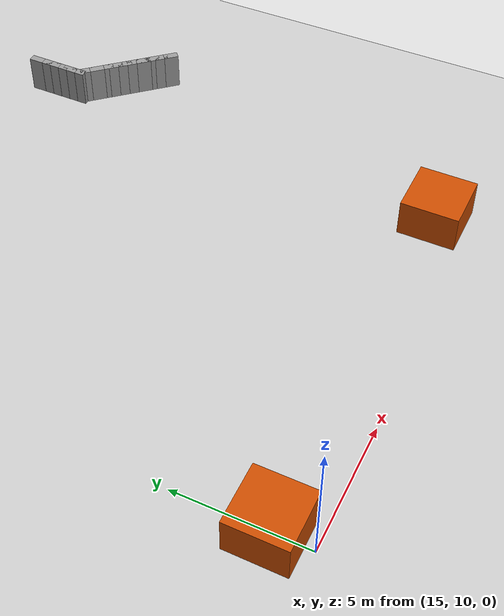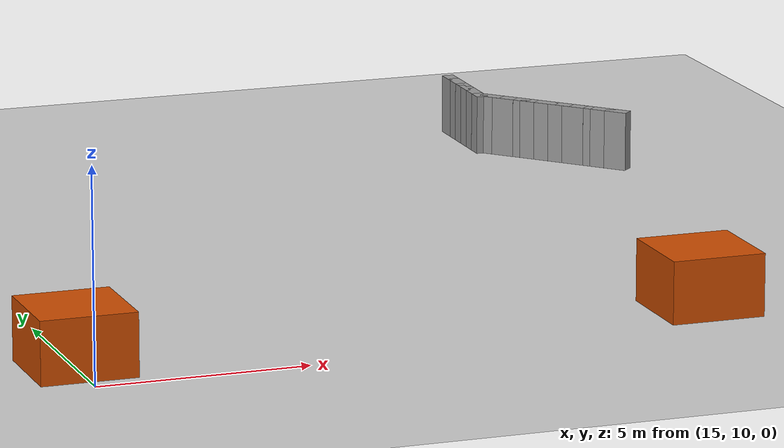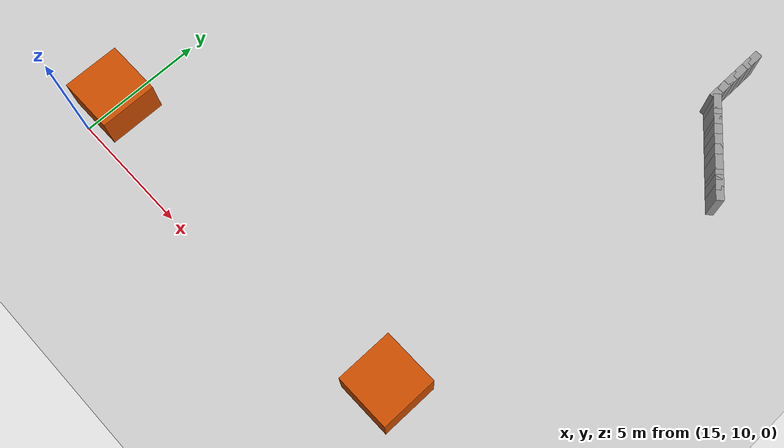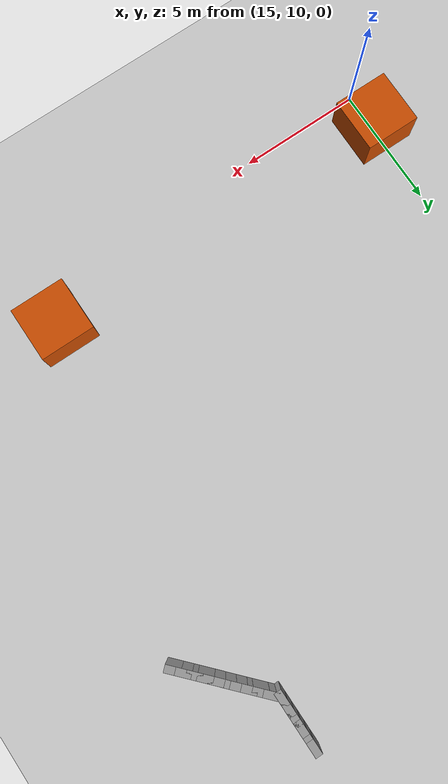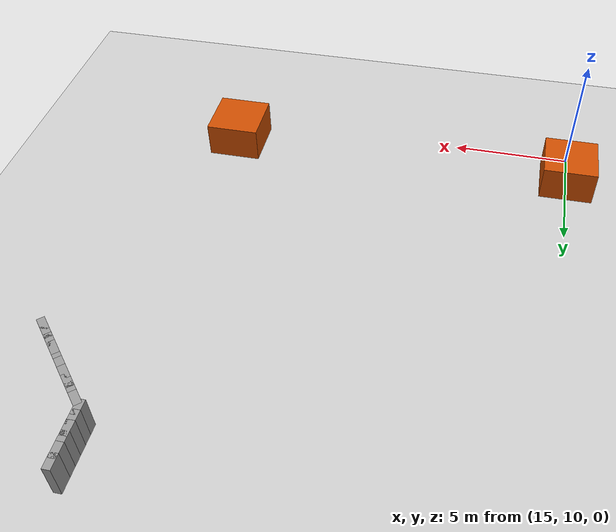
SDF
<sdf version="1.5">
 <world name="img_rect_obs">
  <include><uri>model://sun</uri></include>
  <include><uri>model://ground_plane</uri></include>
  <model name="wallL_7">
   <static>true</static>
   <pose>30.569 29.623 0.750 0 0 -1.571</pose>
   <link name="link">
    <collision name="col"><geometry><box><size>0.600 0.300 1.500</size></box></geometry></collision>
    <visual name="vis">
     <geometry><box><size>0.600 0.300 1.500</size></box></geometry>
     <material><ambient>0.6 0.6 0.6 1</ambient><diffuse>0.6 0.6 0.6 1</diffuse></material>
    </visual>
   </link>
  </model>
  <model name="wallL_8">
   <static>true</static>
   <pose>30.569 29.223 0.750 0 0 -1.571</pose>
   <link name="link">
    <collision name="col"><geometry><box><size>0.600 0.300 1.500</size></box></geometry></collision>
    <visual name="vis">
     <geometry><box><size>0.600 0.300 1.500</size></box></geometry>
     <material><ambient>0.6 0.6 0.6 1</ambient><diffuse>0.6 0.6 0.6 1</diffuse></material>
    </visual>
   </link>
  </model>
  <model name="wallL_9">
   <static>true</static>
   <pose>30.569 28.823 0.750 0 0 -1.571</pose>
   <link name="link">
    <collision name="col"><geometry><box><size>0.600 0.300 1.500</size></box></geometry></collision>
    <visual name="vis">
     <geometry><box><size>0.600 0.300 1.500</size></box></geometry>
     <material><ambient>0.6 0.6 0.6 1</ambient><diffuse>0.6 0.6 0.6 1</diffuse></material>
    </visual>
   </link>
  </model>
  <model name="wallL_10">
   <static>true</static>
   <pose>30.569 28.423 0.750 0 0 -1.571</pose>
   <link name="link">
    <collision name="col"><geometry><box><size>0.600 0.300 1.500</size></box></geometry></collision>
    <visual name="vis">
     <geometry><box><size>0.600 0.300 1.500</size></box></geometry>
     <material><ambient>0.6 0.6 0.6 1</ambient><diffuse>0.6 0.6 0.6 1</diffuse></material>
    </visual>
   </link>
  </model>
  <model name="wallL_11">
   <static>true</static>
   <pose>30.569 28.023 0.750 0 0 -1.571</pose>
   <link name="link">
    <collision name="col"><geometry><box><size>0.600 0.300 1.500</size></box></geometry></collision>
    <visual name="vis">
     <geometry><box><size>0.600 0.300 1.500</size></box></geometry>
     <material><ambient>0.6 0.6 0.6 1</ambient><diffuse>0.6 0.6 0.6 1</diffuse></material>
    </visual>
   </link>
  </model>
  <model name="wallL_12">
   <static>true</static>
   <pose>30.569 27.623 0.750 0 0 -1.571</pose>
   <link name="link">
    <collision name="col"><geometry><box><size>0.600 0.300 1.500</size></box></geometry></collision>
    <visual name="vis">
     <geometry><box><size>0.600 0.300 1.500</size></box></geometry>
     <material><ambient>0.6 0.6 0.6 1</ambient><diffuse>0.6 0.6 0.6 1</diffuse></material>
    </visual>
   </link>
  </model>
  <model name="wallL_13">
   <static>true</static>
   <pose>30.808 27.316 0.750 0 0 -0.829</pose>
   <link name="link">
    <collision name="col"><geometry><box><size>0.600 0.300 1.500</size></box></geometry></collision>
    <visual name="vis">
     <geometry><box><size>0.600 0.300 1.500</size></box></geometry>
     <material><ambient>0.6 0.6 0.6 1</ambient><diffuse>0.6 0.6 0.6 1</diffuse></material>
    </visual>
   </link>
  </model>
  <model name="wallL_14">
   <static>true</static>
   <pose>31.078 27.021 0.750 0 0 -0.829</pose>
   <link name="link">
    <collision name="col"><geometry><box><size>0.600 0.300 1.500</size></box></geometry></collision>
    <visual name="vis">
     <geometry><box><size>0.600 0.300 1.500</size></box></geometry>
     <material><ambient>0.6 0.6 0.6 1</ambient><diffuse>0.6 0.6 0.6 1</diffuse></material>
    </visual>
   </link>
  </model>
  <model name="wallL_15">
   <static>true</static>
   <pose>31.349 26.726 0.750 0 0 -0.829</pose>
   <link name="link">
    <collision name="col"><geometry><box><size>0.600 0.300 1.500</size></box></geometry></collision>
    <visual name="vis">
     <geometry><box><size>0.600 0.300 1.500</size></box></geometry>
     <material><ambient>0.6 0.6 0.6 1</ambient><diffuse>0.6 0.6 0.6 1</diffuse></material>
    </visual>
   </link>
  </model>
  <model name="wallL_16">
   <static>true</static>
   <pose>31.619 26.431 0.750 0 0 -0.829</pose>
   <link name="link">
    <collision name="col"><geometry><box><size>0.600 0.300 1.500</size></box></geometry></collision>
    <visual name="vis">
     <geometry><box><size>0.600 0.300 1.500</size></box></geometry>
     <material><ambient>0.6 0.6 0.6 1</ambient><diffuse>0.6 0.6 0.6 1</diffuse></material>
    </visual>
   </link>
  </model>
  <model name="wallL_17">
   <static>true</static>
   <pose>31.889 26.136 0.750 0 0 -0.829</pose>
   <link name="link">
    <collision name="col"><geometry><box><size>0.600 0.300 1.500</size></box></geometry></collision>
    <visual name="vis">
     <geometry><box><size>0.600 0.300 1.500</size></box></geometry>
     <material><ambient>0.6 0.6 0.6 1</ambient><diffuse>0.6 0.6 0.6 1</diffuse></material>
    </visual>
   </link>
  </model>
  <model name="wallL_18">
   <static>true</static>
   <pose>32.159 25.841 0.750 0 0 -0.829</pose>
   <link name="link">
    <collision name="col"><geometry><box><size>0.600 0.300 1.500</size></box></geometry></collision>
    <visual name="vis">
     <geometry><box><size>0.600 0.300 1.500</size></box></geometry>
     <material><ambient>0.6 0.6 0.6 1</ambient><diffuse>0.6 0.6 0.6 1</diffuse></material>
    </visual>
   </link>
  </model>
  <model name="wallL_19">
   <static>true</static>
   <pose>32.429 25.546 0.750 0 0 -0.829</pose>
   <link name="link">
    <collision name="col"><geometry><box><size>0.600 0.300 1.500</size></box></geometry></collision>
    <visual name="vis">
     <geometry><box><size>0.600 0.300 1.500</size></box></geometry>
     <material><ambient>0.6 0.6 0.6 1</ambient><diffuse>0.6 0.6 0.6 1</diffuse></material>
    </visual>
   </link>
  </model>
  <model name="wallL_20">
   <static>true</static>
   <pose>32.700 25.252 0.750 0 0 -0.829</pose>
   <link name="link">
    <collision name="col"><geometry><box><size>0.600 0.300 1.500</size></box></geometry></collision>
    <visual name="vis">
     <geometry><box><size>0.600 0.300 1.500</size></box></geometry>
     <material><ambient>0.6 0.6 0.6 1</ambient><diffuse>0.6 0.6 0.6 1</diffuse></material>
    </visual>
   </link>
  </model>
  <model name="wallL_21">
   <static>true</static>
   <pose>32.970 24.957 0.750 0 0 -0.829</pose>
   <link name="link">
    <collision name="col"><geometry><box><size>0.600 0.300 1.500</size></box></geometry></collision>
    <visual name="vis">
     <geometry><box><size>0.600 0.300 1.500</size></box></geometry>
     <material><ambient>0.6 0.6 0.6 1</ambient><diffuse>0.6 0.6 0.6 1</diffuse></material>
    </visual>
   </link>
  </model>
  <model name="wallL_22">
   <static>true</static>
   <pose>33.240 24.662 0.750 0 0 -0.829</pose>
   <link name="link">
    <collision name="col"><geometry><box><size>0.600 0.300 1.500</size></box></geometry></collision>
    <visual name="vis">
     <geometry><box><size>0.600 0.300 1.500</size></box></geometry>
     <material><ambient>0.6 0.6 0.6 1</ambient><diffuse>0.6 0.6 0.6 1</diffuse></material>
    </visual>
   </link>
  </model>
  <model name="obs_3">
   <static>true</static>
   <pose>30.000 11.500 0.750 0 0 0.000</pose>
   <link name="link">
    <collision name="col"><geometry><box><size>2.263 2.263 1.500</size></box></geometry></collision>
    <visual name="vis">
     <geometry><box><size>2.263 2.263 1.500</size></box></geometry>
     <material><ambient>0.8 0.3 0.0 1</ambient><diffuse>0.8 0.3 0.0 1</diffuse></material>
    </visual>
   </link>
  </model>
  <model name="obs_4">
   <static>true</static>
   <pose>15.000 11.500 0.750 0 0 0.000</pose>
   <link name="link">
    <collision name="col"><geometry><box><size>2.263 2.263 1.500</size></box></geometry></collision>
    <visual name="vis">
     <geometry><box><size>2.263 2.263 1.500</size></box></geometry>
     <material><ambient>0.8 0.3 0.0 1</ambient><diffuse>0.8 0.3 0.0 1</diffuse></material>
    </visual>
   </link>
  </model>
 </world>
</sdf>
